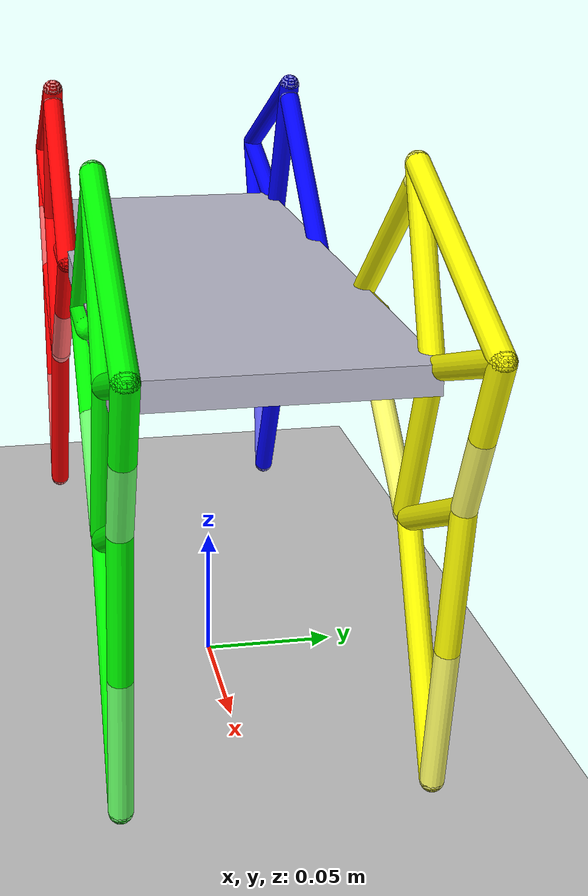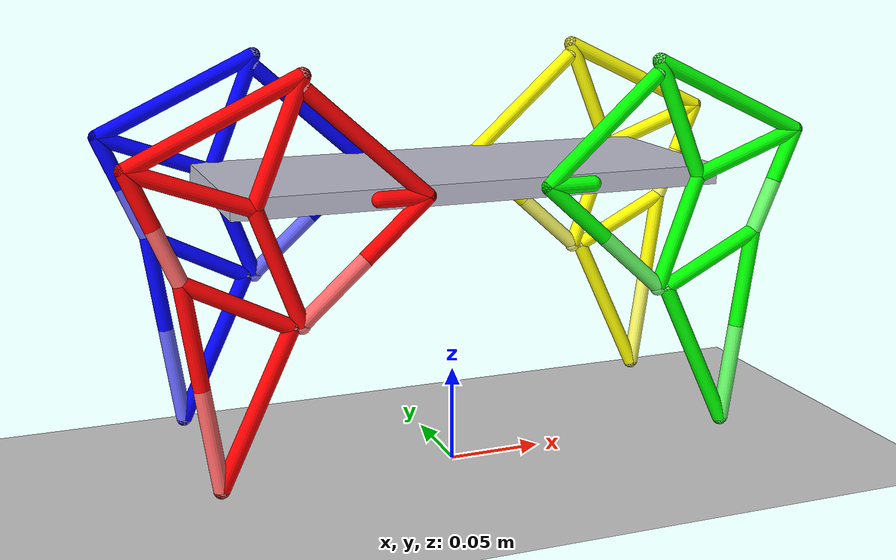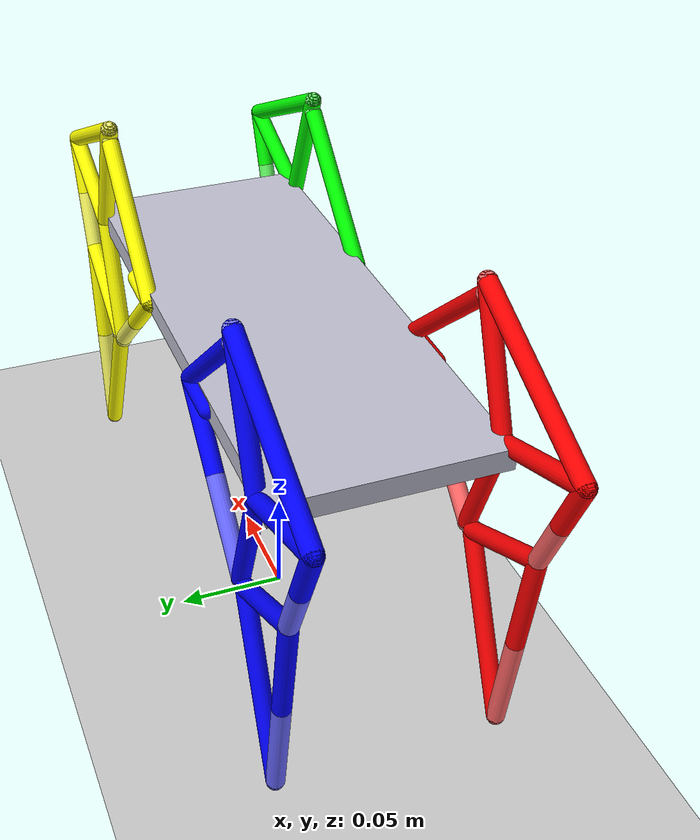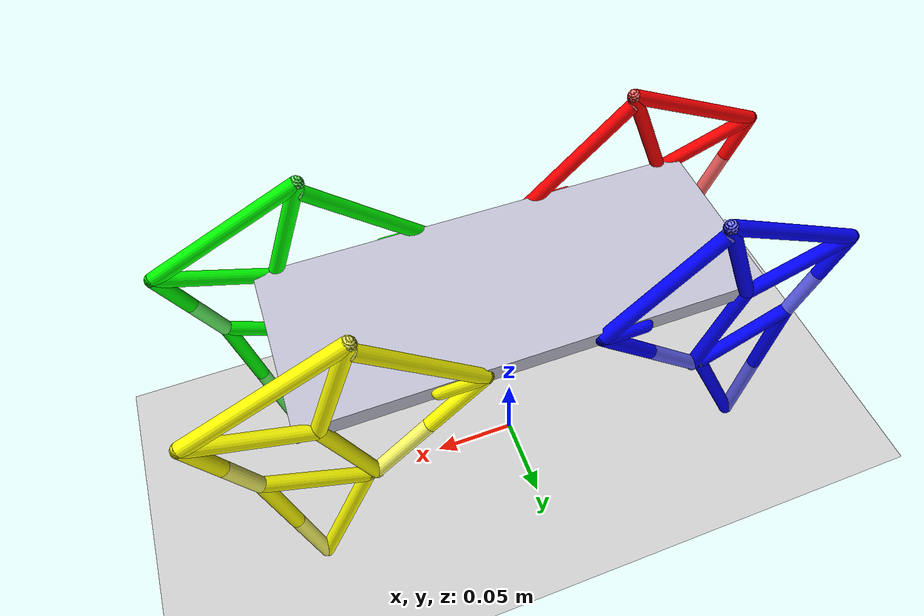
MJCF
<mujoco model="jansen_assembly">
  <compiler angle="degree"/>
  <option gravity="0 0 -9.81"
          timestep="0.00025"
          integrator="implicitfast"
          solver="Newton"
          jacobian="dense"
          iterations="2000"
          ls_iterations="120"
          tolerance="1e-12"
          ls_tolerance="1e-14"
          cone="elliptic"
          noslip_iterations="40"
          noslip_tolerance="1e-10"/>
  <asset>
    <texture name="ground_tex" type="2d" builtin="checker" rgb1="0.22 0.26 0.30" rgb2="0.14 0.17 0.20" width="512" height="512"/>
    <material name="ground_mat" texture="ground_tex" texrepeat="24 24" reflectance="0"/>
  </asset>

  <default>
    <joint type="hinge" axis="0 1 0" damping="0.3" armature="0.003"/>
    <geom type="capsule" size="0.004" rgba="0.8 0.8 0.8 1" contype="0" conaffinity="0" density="1000"/>
    <site size="0.004"/>
    <default class="prismatic_joint">
      <joint type="slide" limited="true" range="-0.02 0.02" damping="100" armature="0.1"
             solreflimit="0.00001 1" solimplimit="0.99 0.999 0.001"/>
    </default>
    <default class="leg_contact">
      <geom contype="1" conaffinity="2" condim="3" friction="0.6 0.08 0.01"/>
    </default>
  </default>

  <worldbody>
    <geom name="ground" type="plane" pos="0 0 0" size="9 9 0.1" material="ground_mat" friction="0.6 0.08 0.01" contype="2" conaffinity="1"/>

    <!-- Plate dimensions: 0.25008 m x 0.1 m x 0.01 m -->
    <!-- MuJoCo box size uses half-extents: 0.12504 0.05 0.005 -->
    <!-- Center at z=0.155 so the plate bottom is at z=0.15 -->
    <body name="plate_body" pos="0 0 0.155">
      <freejoint name="plate_free"/>
      <geom
        name="plate"
        type="box"
        size="0.12504 0.05 0.005"
        rgba="0.75 0.75 0.82 1"
        density="5000"/>

      <body name="link_m" pos="-0.055 -0.05 0" childclass="leg_contact">
        <joint name="hinge_m" type="hinge" pos="0 0 0"/>
        <geom name="link_m" type="capsule" fromto="0 0 0 0.02384 0 0" rgba="1 0 0 1"/>
              <body name="link_j" pos="0.02384 0 0" euler="0 42 0">
                <joint name="hinge_j" type="hinge" pos="0 0 0"/>
                <geom name="link_j" type="capsule" fromto="0 0 0 -0.07870 0 0" rgba="1 0 0 1"/>
                <site name="j_end" pos="-0.07870 0 0" rgba="1 0.4 0.4 1"/>
              </body>
              <body name="link_k" pos="0.02384 0 0" euler="0 -42 0">
                <joint name="hinge_k" type="hinge" pos="0 0 0"/>
                <geom name="link_k_outer" type="capsule" fromto="0 0 0 -0.04180 0 0" rgba="1 0 0 1"/>
                <body name="link_k_inner" pos="-0.04180 0 0">
                  <joint class="prismatic_joint" name="slide_k" axis="-1 0 0"/>
                  <geom name="link_k_inner" type="capsule" fromto="0 0 0 -0.04180 0 0" rgba="1 0.4 0.4 1"/>
                  <site name="k_end" pos="-0.04180 0 0" rgba="1 0.5 0.5 1"/>
                </body>
              </body>

      </body>
      <body name="link_c" pos="-0.11404 -0.05 0" euler="0 -110 0" childclass="leg_contact">
        <joint name="hinge_c" type="hinge" pos="0 0 0"/>
        <geom name="link_c" type="capsule" fromto="0 0 0 -0.06006 0 0" rgba="1 0 0 1"/>
        <site name="c_end" pos="-0.06046 0 0" rgba="1 0.5 0.5 1"/>
      </body>
      <body name="triangle_link1" pos="-0.11404 -0.05 0" euler="0 22 0" childclass="leg_contact">
        <joint name="tri_hinge" type="hinge" pos="0 0 0"/>

        <!-- Rigid triangle in one body: B(0,0,0), E(0,0,0.06328), D(-0.08869,0,0.00317) -->
        <geom name="edge_b" type="capsule" fromto="0 0 0 0 0 0.06328" rgba="1 0 0 1"/>
        <geom name="edge_e" type="capsule" fromto="0 0 0.06328 -0.0600779625 0 -0.0019622756" rgba="1 0 0 1"/>
        <geom name="edge_d" type="capsule" fromto="-0.0600779625 0 -0.0019622756 0 0 0" rgba="1 0 0 1"/>
              <body name="link_f_outer" pos="-0.0600779625 0 -0.0019622756" euler="0 -135 0">
                <joint name="hinge_f" type="hinge" pos="0 0 0"/>
                <geom name="link_f_outer" type="capsule" fromto="0 0 0 -0.02836 0 0" rgba="1 0 0 1"/>
                <body name="link_f_inner" pos="-0.02836 0 0">
                    <joint class="prismatic_joint" name="slide_f" axis="-1 0 0"/>
                    <geom name="link_f_inner" type="capsule" fromto="0 0 0 -0.02836 0 0" rgba="1 0.4 0.4 1"/>
                    <body name="triangle_link2" pos="-0.02836 0 0" euler="0 -130 0">
                        <joint name="tri_hinge_ghi" type="hinge" pos="0 0 0"/>
                        <inertial pos="0 0 0" mass="1e-4" diaginertia="1e-8 1e-8 1e-8"/>

                        <!-- Articulated G-H-I triangle: links rotate relative to each other.
                             H is telescopic via slide_h. -->
                        <body name="link_g_red" pos="0 0 0">
                            <joint name="hinge_g_red" type="hinge" pos="0 0 0"/>
                            <geom name="edge_g" type="capsule" fromto="0 0 0 0 0 0.05614" rgba="1 0 0 1"/>
                            <body name="link_i_red" pos="0 0 0.05614">
                                <joint name="hinge_i_red" type="hinge" pos="0 0 0"/>
                                <site name="g_i" pos="0 0 0" rgba="1 0.5 0.5 1"/>
                                <geom name="edge_i" type="capsule" fromto="0 0 0 0.0832629937 0 0.0024827155" rgba="1 0 0 1"/>
                                <site name="h_match_red" pos="0.0832629937 0 0.0024827155" rgba="1 0.5 0.5 1"/>
                            </body>
                        </body>
                        <body name="link_h_red" pos="0 0 0">
                            <joint name="hinge_h_red" type="hinge" pos="0 0 0"/>
                            <geom name="edge_h_outer" type="capsule" fromto="0 0 0 0.0416314969 0 0.0293113578" rgba="1 0 0 1"/>
                            <body name="link_h_inner" pos="0.0416314969 0 0.0293113578">
                                <joint class="prismatic_joint" name="slide_h" axis="0.8178 0 0.5755"/>
                                <geom name="edge_h_inner" type="capsule" fromto="0 0 0 0.0416314969 0 0.0293113578" rgba="1 0.4 0.4 1"/>
                                <site name="h_end_red" pos="0.0416314969 0 0.0293113578" rgba="1 0.5 0.5 1"/>
                            </body>
                        </body>
                    </body>
                </body>
              </body>

        <site name="b_e" pos="0 0 0.06328" rgba="1 0.5 0.5 1"/>
      </body>

      <body name="link_m_r" pos="0.055 -0.05 0" childclass="leg_contact">
        <joint name="hinge_m_r" type="hinge" pos="0 0 0"/>
        <geom name="link_m_r" type="capsule" fromto="0 0 0 -0.02384 0 0" rgba="0 1 0 1"/>
        <body name="link_j_r" pos="-0.02384 0 0" euler="0 -42 0">
          <joint name="hinge_j_r" type="hinge" pos="0 0 0"/>
          <geom name="link_j_r" type="capsule" fromto="0 0 0 0.07870 0 0" rgba="0 1 0 1"/>
          <site name="j_end_r" pos="0.07870 0 0" rgba="0.4 1 0.4 1"/>
        </body>
        <body name="link_k_r" pos="-0.02384 0 0" euler="0 42 0">
          <joint name="hinge_k_r" type="hinge" pos="0 0 0"/>
          <geom name="link_k_outer_r" type="capsule" fromto="0 0 0 0.04180 0 0" rgba="0 1 0 1"/>
          <body name="link_k_inner_r" pos="0.04180 0 0">
            <joint class="prismatic_joint" name="slide_k_r" axis="1 0 0"/>
            <geom name="link_k_inner_r" type="capsule" fromto="0 0 0 0.04180 0 0" rgba="0.4 1 0.4 1"/>
            <site name="k_end_r" pos="0.04180 0 0" rgba="0.5 1 0.5 1"/>
          </body>
        </body>
      </body>

      <body name="link_c_r" pos="0.11404 -0.05 0" euler="0 110 0" childclass="leg_contact">
        <joint name="hinge_c_r" type="hinge" pos="0 0 0"/>
        <geom name="link_c_r" type="capsule" fromto="0 0 0 0.06006 0 0" rgba="0 1 0 1"/>
        <site name="c_end_r" pos="0.06046 0 0" rgba="0.5 1 0.5 1"/>
      </body>

      <body name="triangle_link1_r" pos="0.11404 -0.05 0" euler="0 -22 0" childclass="leg_contact">
        <joint name="tri_hinge_r" type="hinge" pos="0 0 0"/>

        <geom name="edge_b_r" type="capsule" fromto="0 0 0 0 0 0.06328" rgba="0 1 0 1"/>
        <geom name="edge_e_r" type="capsule" fromto="0 0 0.06328 0.0600779625 0 -0.0019622756" rgba="0 1 0 1"/>
        <geom name="edge_d_r" type="capsule" fromto="0.0600779625 0 -0.0019622756 0 0 0" rgba="0 1 0 1"/>

        <body name="link_f_r" pos="0.0600779625 0 -0.0019622756" euler="0 135 0">
          <joint name="hinge_f_r" type="hinge" pos="0 0 0"/>
          <geom name="link_f_r_outer" type="capsule" fromto="0 0 0 0.02836 0 0" rgba="0 1 0 1"/>
          <body name="link_f_r_inner" pos="0.02836 0 0">
            <joint class="prismatic_joint" name="slide_f_r" axis="1 0 0"/>
            <geom name="link_f_r_inner" type="capsule" fromto="0 0 0 0.02836 0 0" rgba="0.4 1 0.4 1"/>

            <body name="triangle_link2_r" pos="0.02836 0 0" euler="0 130 0">
            <joint name="tri_hinge_ghi_r" type="hinge" pos="0 0 0"/>
            <inertial pos="0 0 0" mass="1e-4" diaginertia="1e-8 1e-8 1e-8"/>
            <body name="link_g_r" pos="0 0 0">
              <joint name="hinge_g_r" type="hinge" pos="0 0 0"/>
              <geom name="edge_g_r" type="capsule" fromto="0 0 0 0 0 0.05614" rgba="0 1 0 1"/>
              <body name="link_i_r" pos="0 0 0.05614">
                <joint name="hinge_i_r" type="hinge" pos="0 0 0"/>
                <site name="g_i_r" pos="0 0 0" rgba="0.5 1 0.5 1"/>
                <geom name="edge_i_r" type="capsule" fromto="0 0 0 -0.0832629937 0 0.0024827155" rgba="0 1 0 1"/>
                <site name="h_match_r" pos="-0.0832629937 0 0.0024827155" rgba="0.5 1 0.5 1"/>
              </body>
            </body>
            <body name="link_h_r" pos="0 0 0">
              <joint name="hinge_h_r" type="hinge" pos="0 0 0"/>
              <geom name="edge_h_outer_r" type="capsule" fromto="0 0 0 -0.0416314969 0 0.0293113578" rgba="0 1 0 1"/>
              <body name="link_h_inner_r" pos="-0.0416314969 0 0.0293113578">
                <joint class="prismatic_joint" name="slide_h_r" axis="-0.8178 0 0.5755"/>
                <geom name="edge_h_inner_r" type="capsule" fromto="0 0 0 -0.0416314969 0 0.0293113578" rgba="0.4 1 0.4 1"/>
                <site name="h_end_r" pos="-0.0416314969 0 0.0293113578" rgba="0.5 1 0.5 1"/>
              </body>
            </body>
            </body>
          </body>
        </body>

        <site name="b_e_r" pos="0 0 0.06328" rgba="0.5 1 0.5 1"/>
      </body>

      <body name="link_m_y" pos="-0.055 0.05 0" childclass="leg_contact">
        <joint name="hinge_m_y" type="hinge" pos="0 0 0"/>
        <geom name="link_m_y" type="capsule" fromto="0 0 0 0.02384 0 0" rgba="0 0 1 1"/>
        <body name="link_j_y" pos="0.02384 0 0" euler="0 42 0">
          <joint name="hinge_j_y" type="hinge" pos="0 0 0"/>
          <geom name="link_j_y" type="capsule" fromto="0 0 0 -0.07870 0 0" rgba="0 0 1 1"/>
          <site name="j_end_y" pos="-0.07870 0 0" rgba="0.4 0.4 1 1"/>
        </body>
        <body name="link_k_y" pos="0.02384 0 0" euler="0 -42 0">
          <joint name="hinge_k_y" type="hinge" pos="0 0 0"/>
          <geom name="link_k_outer_y" type="capsule" fromto="0 0 0 -0.04180 0 0" rgba="0 0 1 1"/>
          <body name="link_k_inner_y" pos="-0.04180 0 0">
            <joint class="prismatic_joint" name="slide_k_y" axis="-1 0 0"/>
            <geom name="link_k_inner_y" type="capsule" fromto="0 0 0 -0.04180 0 0" rgba="0.4 0.4 1 1"/>
            <site name="k_end_y" pos="-0.04180 0 0" rgba="0.5 0.5 1 1"/>
          </body>
        </body>
      </body>

      <body name="link_c_y" pos="-0.11404 0.05 0" euler="0 -110 0" childclass="leg_contact">
        <joint name="hinge_c_y" type="hinge" pos="0 0 0"/>
        <geom name="link_c_y" type="capsule" fromto="0 0 0 -0.06006 0 0" rgba="0 0 1 1"/>
        <site name="c_end_y" pos="-0.06046 0 0" rgba="0.5 0.5 1 1"/>
      </body>

      <body name="triangle_link1_y" pos="-0.11404 0.05 0" euler="0 22 0" childclass="leg_contact">
        <joint name="tri_hinge_y" type="hinge" pos="0 0 0"/>
        <geom name="edge_b_y" type="capsule" fromto="0 0 0 0 0 0.06328" rgba="0 0 1 1"/>
        <geom name="edge_e_y" type="capsule" fromto="0 0 0.06328 -0.0600779625 0 -0.0019622756" rgba="0 0 1 1"/>
        <geom name="edge_d_y" type="capsule" fromto="-0.0600779625 0 -0.0019622756 0 0 0" rgba="0 0 1 1"/>
        <body name="link_f_y" pos="-0.0600779625 0 -0.0019622756" euler="0 -135 0">
          <joint name="hinge_f_y" type="hinge" pos="0 0 0"/>
          <geom name="link_f_y_outer" type="capsule" fromto="0 0 0 -0.02836 0 0" rgba="0 0 1 1"/>
          <body name="link_f_y_inner" pos="-0.02836 0 0">
            <joint class="prismatic_joint" name="slide_f_y" axis="-1 0 0"/>
            <geom name="link_f_y_inner" type="capsule" fromto="0 0 0 -0.02836 0 0" rgba="0.4 0.4 1 1"/>
            <body name="triangle_link2_y" pos="-0.02836 0 0" euler="0 -130 0">
            <joint name="tri_hinge_ghi_y" type="hinge" pos="0 0 0"/>
            <inertial pos="0 0 0" mass="1e-4" diaginertia="1e-8 1e-8 1e-8"/>
            <body name="link_g_y" pos="0 0 0">
              <joint name="hinge_g_y" type="hinge" pos="0 0 0"/>
              <geom name="edge_g_y" type="capsule" fromto="0 0 0 0 0 0.05614" rgba="0 0 1 1"/>
              <body name="link_i_y" pos="0 0 0.05614">
                <joint name="hinge_i_y" type="hinge" pos="0 0 0"/>
                <site name="g_i_y" pos="0 0 0" rgba="0.5 0.5 1 1"/>
                <geom name="edge_i_y" type="capsule" fromto="0 0 0 0.0832629937 0 0.0024827155" rgba="0 0 1 1"/>
                <site name="h_match_y" pos="0.0832629937 0 0.0024827155" rgba="0.5 0.5 1 1"/>
              </body>
            </body>
            <body name="link_h_y" pos="0 0 0">
              <joint name="hinge_h_y" type="hinge" pos="0 0 0"/>
              <geom name="edge_h_outer_y" type="capsule" fromto="0 0 0 0.0416314969 0 0.0293113578" rgba="0 0 1 1"/>
              <body name="link_h_inner_y" pos="0.0416314969 0 0.0293113578">
                <joint class="prismatic_joint" name="slide_h_y" axis="0.8178 0 0.5755"/>
                <geom name="edge_h_inner_y" type="capsule" fromto="0 0 0 0.0416314969 0 0.0293113578" rgba="0.4 0.4 1 1"/>
                <site name="h_end_y" pos="0.0416314969 0 0.0293113578" rgba="0.5 0.5 1 1"/>
              </body>
            </body>
            </body>
          </body>
        </body>
        <site name="b_e_y" pos="0 0 0.06328" rgba="0.5 0.5 1 1"/>
      </body>

      <body name="link_m_r_y" pos="0.055 0.05 0" childclass="leg_contact">
        <joint name="hinge_m_r_y" type="hinge" pos="0 0 0"/>
        <geom name="link_m_r_y" type="capsule" fromto="0 0 0 -0.02384 0 0" rgba="1 1 0 1"/>
        <body name="link_j_r_y" pos="-0.02384 0 0" euler="0 -42 0">
          <joint name="hinge_j_r_y" type="hinge" pos="0 0 0"/>
          <geom name="link_j_r_y" type="capsule" fromto="0 0 0 0.07870 0 0" rgba="1 1 0 1"/>
          <site name="j_end_r_y" pos="0.07870 0 0" rgba="1 1 0.4 1"/>
        </body>
        <body name="link_k_r_y" pos="-0.02384 0 0" euler="0 42 0">
          <joint name="hinge_k_r_y" type="hinge" pos="0 0 0"/>
          <geom name="link_k_outer_r_y" type="capsule" fromto="0 0 0 0.04180 0 0" rgba="1 1 0 1"/>
          <body name="link_k_inner_r_y" pos="0.04180 0 0">
            <joint class="prismatic_joint" name="slide_k_r_y" axis="1 0 0"/>
            <geom name="link_k_inner_r_y" type="capsule" fromto="0 0 0 0.04180 0 0" rgba="1 1 0.4 1"/>
            <site name="k_end_r_y" pos="0.04180 0 0" rgba="1 1 0.5 1"/>
          </body>
        </body>
      </body>

      <body name="link_c_r_y" pos="0.11404 0.05 0" euler="0 110 0" childclass="leg_contact">
        <joint name="hinge_c_r_y" type="hinge" pos="0 0 0"/>
        <geom name="link_c_r_y" type="capsule" fromto="0 0 0 0.06006 0 0" rgba="1 1 0 1"/>
        <site name="c_end_r_y" pos="0.06046 0 0" rgba="1 1 0.5 1"/>
      </body>

      <body name="triangle_link1_r_y" pos="0.11404 0.05 0" euler="0 -22 0" childclass="leg_contact">
        <joint name="tri_hinge_r_y" type="hinge" pos="0 0 0"/>
        <geom name="edge_b_r_y" type="capsule" fromto="0 0 0 0 0 0.06328" rgba="1 1 0 1"/>
        <geom name="edge_e_r_y" type="capsule" fromto="0 0 0.06328 0.0600779625 0 -0.0019622756" rgba="1 1 0 1"/>
        <geom name="edge_d_r_y" type="capsule" fromto="0.0600779625 0 -0.0019622756 0 0 0" rgba="1 1 0 1"/>
        <body name="link_f_r_y" pos="0.0600779625 0 -0.0019622756" euler="0 135 0">
          <joint name="hinge_f_r_y" type="hinge" pos="0 0 0"/>
          <geom name="link_f_r_y_outer" type="capsule" fromto="0 0 0 0.02836 0 0" rgba="1 1 0 1"/>
          <body name="link_f_r_y_inner" pos="0.02836 0 0">
            <joint class="prismatic_joint" name="slide_f_r_y" axis="1 0 0"/>
            <geom name="link_f_r_y_inner" type="capsule" fromto="0 0 0 0.02836 0 0" rgba="1 1 0.4 1"/>
            <body name="triangle_link2_r_y" pos="0.02836 0 0" euler="0 130 0">
            <joint name="tri_hinge_ghi_r_y" type="hinge" pos="0 0 0"/>
            <inertial pos="0 0 0" mass="1e-4" diaginertia="1e-8 1e-8 1e-8"/>
            <body name="link_g_r_y" pos="0 0 0">
              <joint name="hinge_g_r_y" type="hinge" pos="0 0 0"/>
              <geom name="edge_g_r_y" type="capsule" fromto="0 0 0 0 0 0.05614" rgba="1 1 0 1"/>
              <body name="link_i_r_y" pos="0 0 0.05614">
                <joint name="hinge_i_r_y" type="hinge" pos="0 0 0"/>
                <site name="g_i_r_y" pos="0 0 0" rgba="1 1 0.5 1"/>
                <geom name="edge_i_r_y" type="capsule" fromto="0 0 0 -0.0832629937 0 0.0024827155" rgba="1 1 0 1"/>
                <site name="h_match_r_y" pos="-0.0832629937 0 0.0024827155" rgba="1 1 0.5 1"/>
              </body>
            </body>
            <body name="link_h_r_y" pos="0 0 0">
              <joint name="hinge_h_r_y" type="hinge" pos="0 0 0"/>
              <geom name="edge_h_outer_r_y" type="capsule" fromto="0 0 0 -0.0416314969 0 0.0293113578" rgba="1 1 0 1"/>
              <body name="link_h_inner_r_y" pos="-0.0416314969 0 0.0293113578">
                <joint class="prismatic_joint" name="slide_h_r_y" axis="-0.8178 0 0.5755"/>
                <geom name="edge_h_inner_r_y" type="capsule" fromto="0 0 0 -0.0416314969 0 0.0293113578" rgba="1 1 0.4 1"/>
                <site name="h_end_r_y" pos="-0.0416314969 0 0.0293113578" rgba="1 1 0.5 1"/>
              </body>
            </body>
            </body>
          </body>
        </body>
        <site name="b_e_r_y" pos="0 0 0.06328" rgba="1 1 0.5 1"/>
      </body>

    </body>
  </worldbody>
<equality>
  <!-- Minimal loop-closure set for this articulated topology: 4 connect constraints per leg. -->

  <!-- Red leg closures -->
  <connect name="j_to_be" site1="b_e" site2="j_end" solref="0.003 3" solimp="0.999 0.99995 0.00005"/>
  <connect name="c_to_k" site1="c_end" site2="k_end" solref="0.003 3" solimp="0.999 0.99995 0.00005"/>
  <connect name="c_to_gi" site1="c_end" site2="g_i" solref="0.003 3" solimp="0.999 0.99995 0.00005"/>
  <connect name="k_to_gi" site1="k_end" site2="g_i" solref="0.003 3" solimp="0.999 0.99995 0.00005"/>
  <connect name="h_to_i_red" site1="h_end_red" site2="h_match_red" solref="0.003 3" solimp="0.999 0.99995 0.00005"/>

  <!-- Green leg closures -->
  <connect name="j_to_be_r" site1="b_e_r" site2="j_end_r" solref="0.003 3" solimp="0.999 0.99995 0.00005"/>
  <connect name="c_to_k_r" site1="c_end_r" site2="k_end_r" solref="0.003 3" solimp="0.999 0.99995 0.00005"/>
  <connect name="c_to_gi_r" site1="c_end_r" site2="g_i_r" solref="0.003 3" solimp="0.999 0.99995 0.00005"/>
  <connect name="k_to_gi_r" site1="k_end_r" site2="g_i_r" solref="0.003 3" solimp="0.999 0.99995 0.00005"/>
  <connect name="h_to_i_r" site1="h_end_r" site2="h_match_r" solref="0.003 3" solimp="0.999 0.99995 0.00005"/>

  <!-- Blue leg closures -->
  <connect name="j_to_be_y" site1="b_e_y" site2="j_end_y" solref="0.003 3" solimp="0.999 0.99995 0.00005"/>
  <connect name="c_to_k_y" site1="c_end_y" site2="k_end_y" solref="0.003 3" solimp="0.999 0.99995 0.00005"/>
  <connect name="c_to_gi_y" site1="c_end_y" site2="g_i_y" solref="0.003 3" solimp="0.999 0.99995 0.00005"/>
  <connect name="k_to_gi_y" site1="k_end_y" site2="g_i_y" solref="0.003 3" solimp="0.999 0.99995 0.00005"/>
  <connect name="h_to_i_y" site1="h_end_y" site2="h_match_y" solref="0.003 3" solimp="0.999 0.99995 0.00005"/>

  <!-- Yellow leg closures -->
  <connect name="j_to_be_r_y" site1="b_e_r_y" site2="j_end_r_y" solref="0.003 3" solimp="0.999 0.99995 0.00005"/>
  <connect name="c_to_k_r_y" site1="c_end_r_y" site2="k_end_r_y" solref="0.003 3" solimp="0.999 0.99995 0.00005"/>
  <connect name="c_to_gi_r_y" site1="c_end_r_y" site2="g_i_r_y" solref="0.003 3" solimp="0.999 0.99995 0.00005"/>
  <connect name="k_to_gi_r_y" site1="k_end_r_y" site2="g_i_r_y" solref="0.003 3" solimp="0.999 0.99995 0.00005"/>
  <connect name="h_to_i_r_y" site1="h_end_r_y" site2="h_match_r_y" solref="0.003 3" solimp="0.999 0.99995 0.00005"/>
</equality>
  <actuator>
    <velocity name="crank_motor" joint="hinge_m" kv="25" ctrllimited="true" ctrlrange="-80 80"/>
    <velocity name="crank_motor_r" joint="hinge_m_r" kv="25" ctrllimited="true" ctrlrange="-80 80"/>
    <velocity name="crank_motor_y" joint="hinge_m_y" kv="25" ctrllimited="true" ctrlrange="-80 80"/>
    <velocity name="crank_motor_r_y" joint="hinge_m_r_y" kv="25" ctrllimited="true" ctrlrange="-80 80"/>
    <position name="h1_prismatic" joint="slide_h" kp="1600000" ctrllimited="true" ctrlrange="-0.02 0.02"/>
    <position name="h2_prismatic" joint="slide_h_r" kp="1600000" ctrllimited="true" ctrlrange="-0.02 0.02"/>
    <position name="h3_prismatic" joint="slide_h_y" kp="160000" ctrllimited="true" ctrlrange="-0.02 0.02"/>
    <position name="h4_prismatic" joint="slide_h_r_y" kp="1600000" ctrllimited="true" ctrlrange="-0.02 0.02"/>
    <position name="k1_prismatic" joint="slide_k" kp="3200000" ctrllimited="true" ctrlrange="-0.02 0.02"/>
    <position name="k2_prismatic" joint="slide_k_r" kp="3200000" ctrllimited="true" ctrlrange="-0.02 0.02  "/>
    <position name="k3_prismatic" joint="slide_k_y" kp="3200000" ctrllimited="true" ctrlrange="-0.02 0.02"/>l
    <position name="k4_prismatic" joint="slide_k_r_y" kp="3200000" ctrllimited="true" ctrlrange="-0.02 0.02"/>
    <position name="f1_prismatic" joint="slide_f" kp="1600000" ctrllimited="true" ctrlrange="-0.02 0.02"/>
    <position name="f2_prismatic" joint="slide_f_r" kp="1600000" ctrllimited="true" ctrlrange="-0.02 0.02"/>
    <position name="f3_prismatic" joint="slide_f_y" kp="1600000" ctrllimited="true" ctrlrange="-0.02 0.02"/>
    <position name="f4_prismatic" joint="slide_f_r_y" kp="1600000" ctrllimited="true" ctrlrange="-0.02 0.02"/>
  </actuator>
</mujoco>
